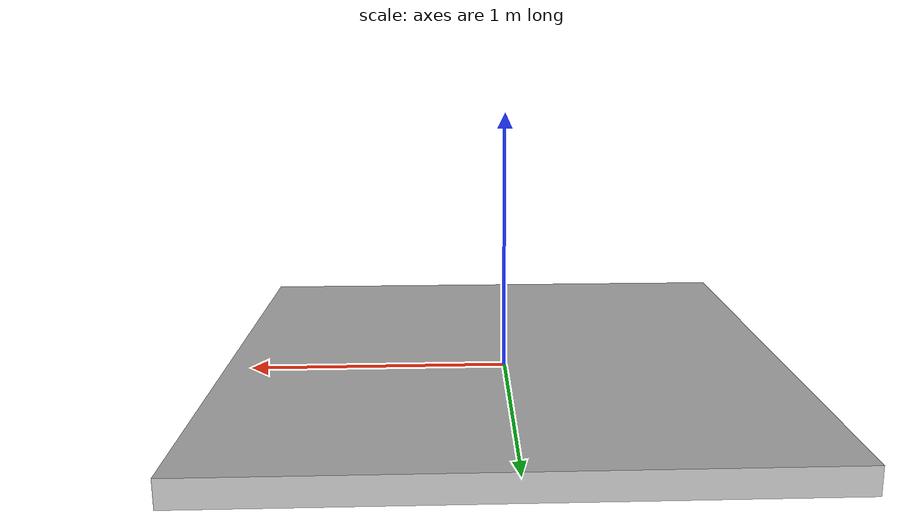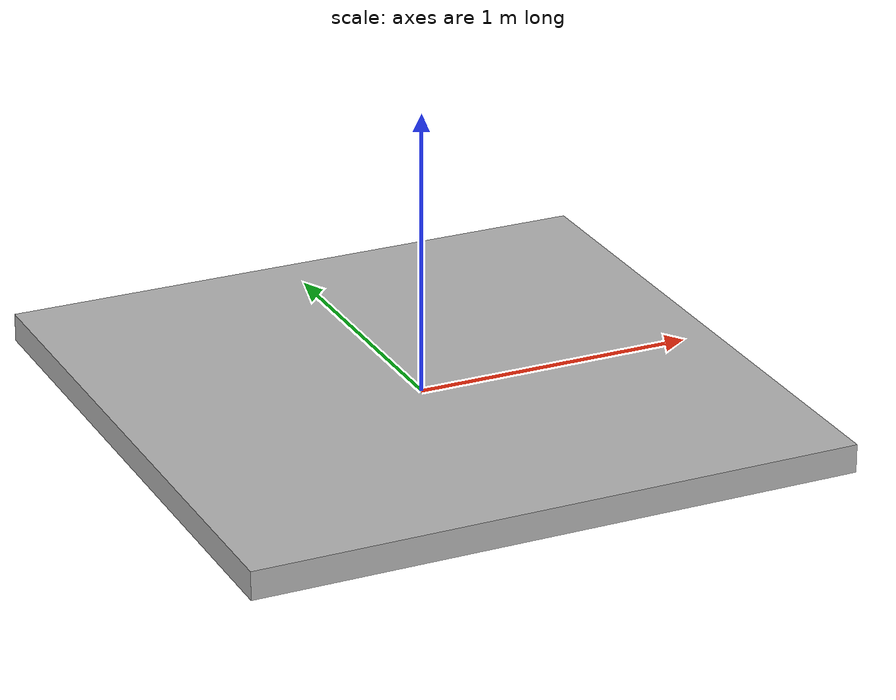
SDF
<?xml version='1.0'?>
<sdf version='1.7'>
  <model name='top_view_fuel_cluster'>
    <link name='link'>
      <inertial>
        <mass>0.489843</mass>
        <inertia>
          <ixx>0.0410659</ixx>
          <ixy>0</ixy>
          <ixz>0</ixz>
          <iyy>0.0410658</iyy>
          <iyz>0</iyz>
          <izz>0.0816405</izz>
        </inertia>
        <pose>0 0 0 0 -0 0</pose>
      </inertial>
      <self_collide>0</self_collide>
      <enable_wind>0</enable_wind>
      <kinematic>0</kinematic>
      <pose>0 0 0 0 -0 0</pose>
      <gravity>1</gravity>
      <visual name='visual'>
        <geometry>
          <box>
            <size>2.14 2.14 0.099999</size>
          </box>
        </geometry>
        <material>
            <script>
              <uri>model://top_view_fuel_cluster/materials/scripts</uri>
              <uri>model://top_view_fuel_cluster/materials/textures</uri>
              <name>snf/Diffuse</name>
            </script>
          <shader type='pixel'>
            <normal_map>__default__</normal_map>
          </shader>
          <ambient>0.3 0.3 0.3 1</ambient>
          <diffuse>0.7 0.7 0.7 1</diffuse>
          <specular>0.01 0.01 0.01 1</specular>
          <emissive>0 0 0 1</emissive>
        </material>
        <pose>0 0 0 0 -0 0</pose>
        <transparency>0</transparency>
        <cast_shadows>1</cast_shadows>
      </visual>
      <collision name='collision'>
        <laser_retro>0</laser_retro>
        <max_contacts>10</max_contacts>
        <pose>0 0 0 0 -0 0</pose>
        <geometry>
          <box>
            <size>2.14 2.14 0.100001</size>
          </box>
        </geometry>
        <surface>
          <friction>
            <ode>
              <mu>1</mu>
              <mu2>1</mu2>
              <fdir1>0 0 0</fdir1>
              <slip1>0</slip1>
              <slip2>0</slip2>
            </ode>
            <torsional>
              <coefficient>1</coefficient>
              <patch_radius>0</patch_radius>
              <surface_radius>0</surface_radius>
              <use_patch_radius>1</use_patch_radius>
              <ode>
                <slip>0</slip>
              </ode>
            </torsional>
          </friction>
          <bounce>
            <restitution_coefficient>0</restitution_coefficient>
            <threshold>1e+06</threshold>
          </bounce>
          <contact>
            <collide_without_contact>0</collide_without_contact>
            <collide_without_contact_bitmask>1</collide_without_contact_bitmask>
            <collide_bitmask>1</collide_bitmask>
            <ode>
              <soft_cfm>0</soft_cfm>
              <soft_erp>0.2</soft_erp>
              <kp>1e+13</kp>
              <kd>1</kd>
              <max_vel>0.01</max_vel>
              <min_depth>0</min_depth>
            </ode>
            <bullet>
              <split_impulse>1</split_impulse>
              <split_impulse_penetration_threshold>-0.01</split_impulse_penetration_threshold>
              <soft_cfm>0</soft_cfm>
              <soft_erp>0.2</soft_erp>
              <kp>1e+13</kp>
              <kd>1</kd>
            </bullet>
          </contact>
        </surface>
      </collision>
    </link>
    <static>0</static>
    <allow_auto_disable>1</allow_auto_disable>
  </model>
</sdf>
